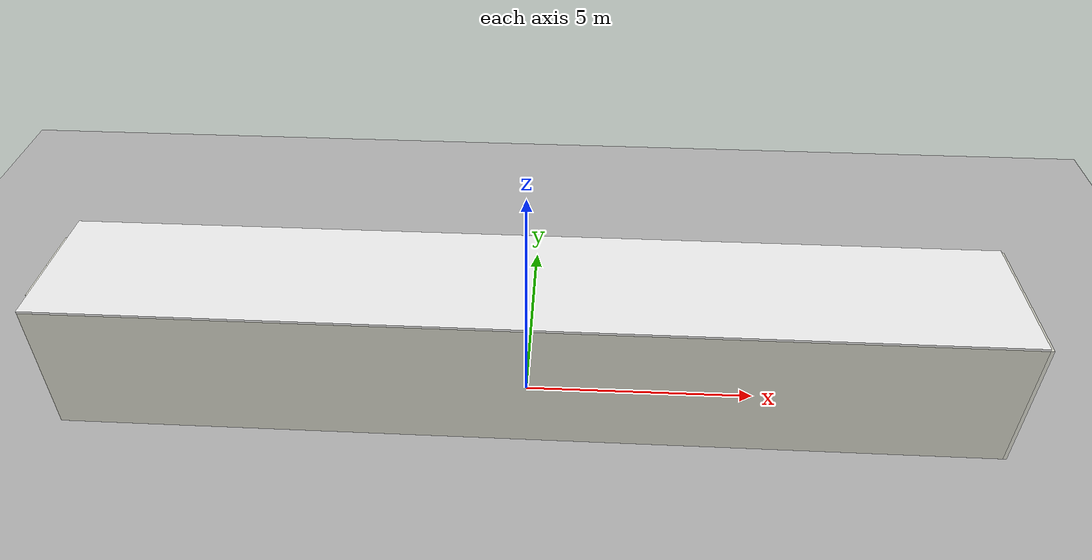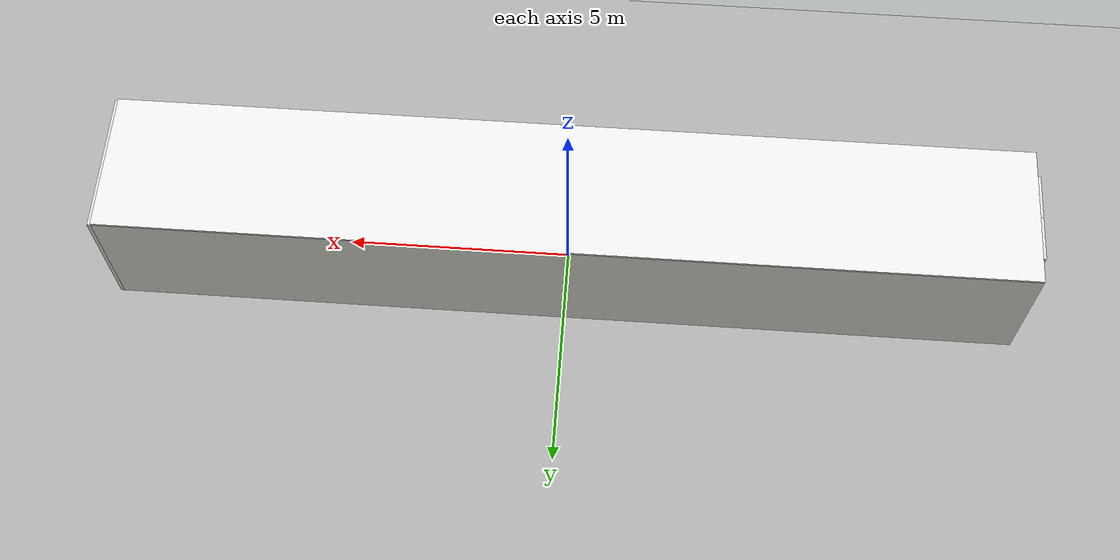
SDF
<?xml version="1.0"?>
<sdf version="1.7">
  <world name="antigravity_indoor">

    <!-- ═══ Physics ══════════════════════════════════════════════════ -->
    <physics type="ode">
      <max_step_size>0.004</max_step_size>
      <real_time_factor>1</real_time_factor>
      <real_time_update_rate>250</real_time_update_rate>
    </physics>

    <!-- ═══ Scene ════════════════════════════════════════════════════ -->
    <scene>
      <ambient>0.6 0.6 0.6 1.0</ambient>
      <background>0.7 0.8 0.9 1.0</background>
      <shadows>true</shadows>
    </scene>

    <!-- ═══ Lighting ═════════════════════════════════════════════════ -->
    <light name="sun" type="directional">
      <cast_shadows>true</cast_shadows>
      <pose>0 0 10 0 0 0</pose>
      <diffuse>0.9 0.9 0.9 1</diffuse>
      <specular>0.3 0.3 0.3 1</specular>
      <direction>-0.5 0.1 -0.9</direction>
    </light>

    <light name="ceiling_1" type="point">
      <pose>5 0 2.8 0 0 0</pose>
      <diffuse>0.8 0.8 0.7 1</diffuse>
      <attenuation>
        <range>15</range>
        <constant>0.3</constant>
        <linear>0.01</linear>
        <quadratic>0.001</quadratic>
      </attenuation>
    </light>

    <light name="ceiling_2" type="point">
      <pose>-5 0 2.8 0 0 0</pose>
      <diffuse>0.8 0.8 0.7 1</diffuse>
      <attenuation>
        <range>15</range>
        <constant>0.3</constant>
        <linear>0.01</linear>
        <quadratic>0.001</quadratic>
      </attenuation>
    </light>

    <!-- ═══ Ground Plane ═════════════════════════════════════════════ -->
    <model name="ground_plane">
      <static>true</static>
      <link name="link">
        <collision name="collision">
          <geometry><plane><normal>0 0 1</normal><size>50 50</size></plane></geometry>
          <surface>
            <friction><ode><mu>100</mu><mu2>50</mu2></ode></friction>
          </surface>
        </collision>
        <visual name="visual">
          <geometry><plane><normal>0 0 1</normal><size>50 50</size></plane></geometry>
          <material>
            <ambient>0.8 0.8 0.8 1</ambient>
            <diffuse>0.7 0.7 0.7 1</diffuse>
          </material>
        </visual>
      </link>
    </model>

    <!-- ═══ MAIN CORRIDOR (20m long, 3m wide, 3m tall) ═══════════════ -->
    <!-- North wall -->
    <model name="corridor_north">
      <static>true</static>
      <pose>0 1.5 1.5 0 0 0</pose>
      <link name="link">
        <collision name="collision">
          <geometry><box><size>20 0.15 3.0</size></box></geometry>
        </collision>
        <visual name="visual">
          <geometry><box><size>20 0.15 3.0</size></box></geometry>
          <material>
            <ambient>0.9 0.9 0.85 1</ambient>
            <diffuse>0.85 0.85 0.8 1</diffuse>
          </material>
        </visual>
      </link>
    </model>

    <!-- South wall -->
    <model name="corridor_south">
      <static>true</static>
      <pose>0 -1.5 1.5 0 0 0</pose>
      <link name="link">
        <collision name="collision">
          <geometry><box><size>20 0.15 3.0</size></box></geometry>
        </collision>
        <visual name="visual">
          <geometry><box><size>20 0.15 3.0</size></box></geometry>
          <material>
            <ambient>0.9 0.9 0.85 1</ambient>
            <diffuse>0.85 0.85 0.8 1</diffuse>
          </material>
        </visual>
      </link>
    </model>

    <!-- West wall (with doorway) -->
    <model name="corridor_west_top">
      <static>true</static>
      <pose>-10 0.5 1.5 0 0 0</pose>
      <link name="link">
        <collision name="collision">
          <geometry><box><size>0.15 1.0 3.0</size></box></geometry>
        </collision>
        <visual name="visual">
          <geometry><box><size>0.15 1.0 3.0</size></box></geometry>
          <material>
            <ambient>0.9 0.9 0.85 1</ambient>
          </material>
        </visual>
      </link>
    </model>

    <model name="corridor_west_bottom">
      <static>true</static>
      <pose>-10 -0.5 1.5 0 0 0</pose>
      <link name="link">
        <collision name="collision">
          <geometry><box><size>0.15 1.0 3.0</size></box></geometry>
        </collision>
        <visual name="visual">
          <geometry><box><size>0.15 1.0 3.0</size></box></geometry>
          <material>
            <ambient>0.9 0.9 0.85 1</ambient>
          </material>
        </visual>
      </link>
    </model>

    <!-- East wall -->
    <model name="corridor_east">
      <static>true</static>
      <pose>10 0 1.5 0 0 0</pose>
      <link name="link">
        <collision name="collision">
          <geometry><box><size>0.15 3.15 3.0</size></box></geometry>
        </collision>
        <visual name="visual">
          <geometry><box><size>0.15 3.15 3.0</size></box></geometry>
          <material>
            <ambient>0.9 0.9 0.85 1</ambient>
          </material>
        </visual>
      </link>
    </model>

    <!-- Ceiling -->
    <model name="corridor_ceiling">
      <static>true</static>
      <pose>0 0 3.0 0 0 0</pose>
      <link name="link">
        <collision name="collision">
          <geometry><box><size>20 3.15 0.1</size></box></geometry>
        </collision>
        <visual name="visual">
          <geometry><box><size>20 3.15 0.1</size></box></geometry>
          <material>
            <ambient>0.95 0.95 0.95 1</ambient>
          </material>
        </visual>
      </link>
    </model>

    <!-- ═══ OBSTACLES (Static objects in corridor) ═══════════════════ -->
    <!-- Box obstacle 1 -->
    <model name="obstacle_box_1">
      <static>true</static>
      <pose>3 0.7 0.25 0 0 0.3</pose>
      <link name="link">
        <collision name="collision">
          <geometry><box><size>0.5 0.5 0.5</size></box></geometry>
        </collision>
        <visual name="visual">
          <geometry><box><size>0.5 0.5 0.5</size></box></geometry>
          <material>
            <ambient>0.6 0.3 0.1 1</ambient>
            <diffuse>0.7 0.4 0.15 1</diffuse>
          </material>
        </visual>
      </link>
    </model>

    <!-- Cylinder obstacle -->
    <model name="obstacle_cylinder_1">
      <static>true</static>
      <pose>-3 -0.5 0.5 0 0 0</pose>
      <link name="link">
        <collision name="collision">
          <geometry><cylinder><radius>0.2</radius><length>1.0</length></cylinder></geometry>
        </collision>
        <visual name="visual">
          <geometry><cylinder><radius>0.2</radius><length>1.0</length></cylinder></geometry>
          <material>
            <ambient>0.3 0.3 0.6 1</ambient>
            <diffuse>0.4 0.4 0.7 1</diffuse>
          </material>
        </visual>
      </link>
    </model>

    <!-- Chair-like obstacle -->
    <model name="obstacle_chair">
      <static>true</static>
      <pose>6 -0.8 0.4 0 0 -0.5</pose>
      <link name="link">
        <collision name="collision">
          <geometry><box><size>0.4 0.4 0.8</size></box></geometry>
        </collision>
        <visual name="visual">
          <geometry><box><size>0.4 0.4 0.8</size></box></geometry>
          <material>
            <ambient>0.5 0.25 0.1 1</ambient>
            <diffuse>0.6 0.35 0.15 1</diffuse>
          </material>
        </visual>
      </link>
    </model>

    <!-- Tall narrow obstacle -->
    <model name="obstacle_pillar">
      <static>true</static>
      <pose>-6 0.3 1.0 0 0 0</pose>
      <link name="link">
        <collision name="collision">
          <geometry><cylinder><radius>0.15</radius><length>2.0</length></cylinder></geometry>
        </collision>
        <visual name="visual">
          <geometry><cylinder><radius>0.15</radius><length>2.0</length></cylinder></geometry>
          <material>
            <ambient>0.7 0.7 0.7 1</ambient>
            <diffuse>0.8 0.8 0.8 1</diffuse>
          </material>
        </visual>
      </link>
    </model>

    <!-- ═══ LANDING PAD ══════════════════════════════════════════════ -->
    <model name="landing_pad">
      <static>true</static>
      <pose>8 0 0.01 0 0 0</pose>
      <link name="link">
        <visual name="visual">
          <geometry><cylinder><radius>0.5</radius><length>0.02</length></cylinder></geometry>
          <material>
            <ambient>1.0 0.5 0.0 1</ambient>
            <diffuse>1.0 0.6 0.0 1</diffuse>
          </material>
        </visual>
      </link>
    </model>

    <!-- ═══ DRONE SPAWN POINT ════════════════════════════════════════ -->
    <!-- Drone spawns at origin, 0.5m above ground -->

  </world>
</sdf>
